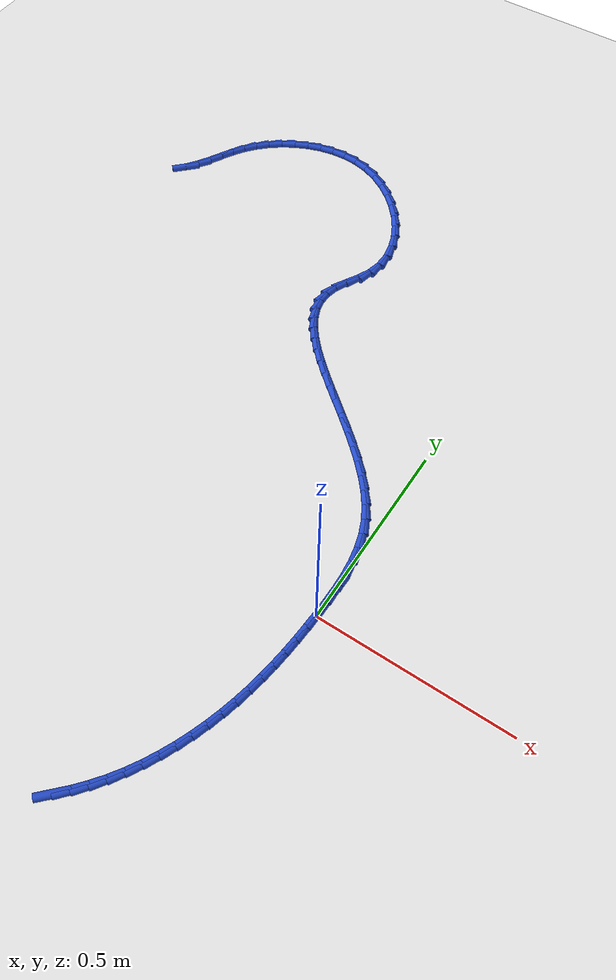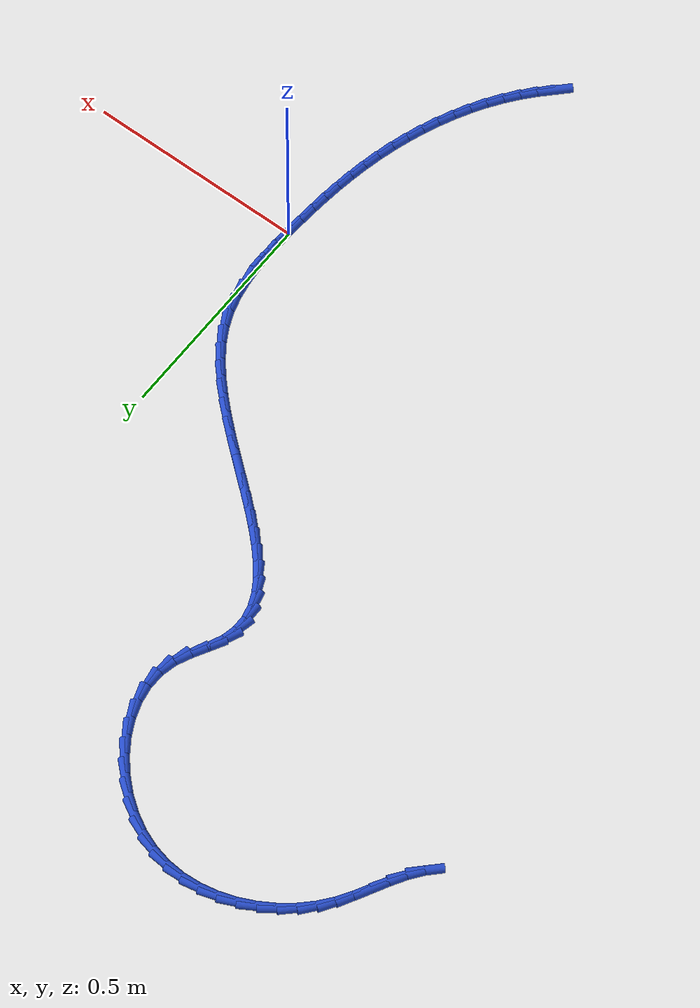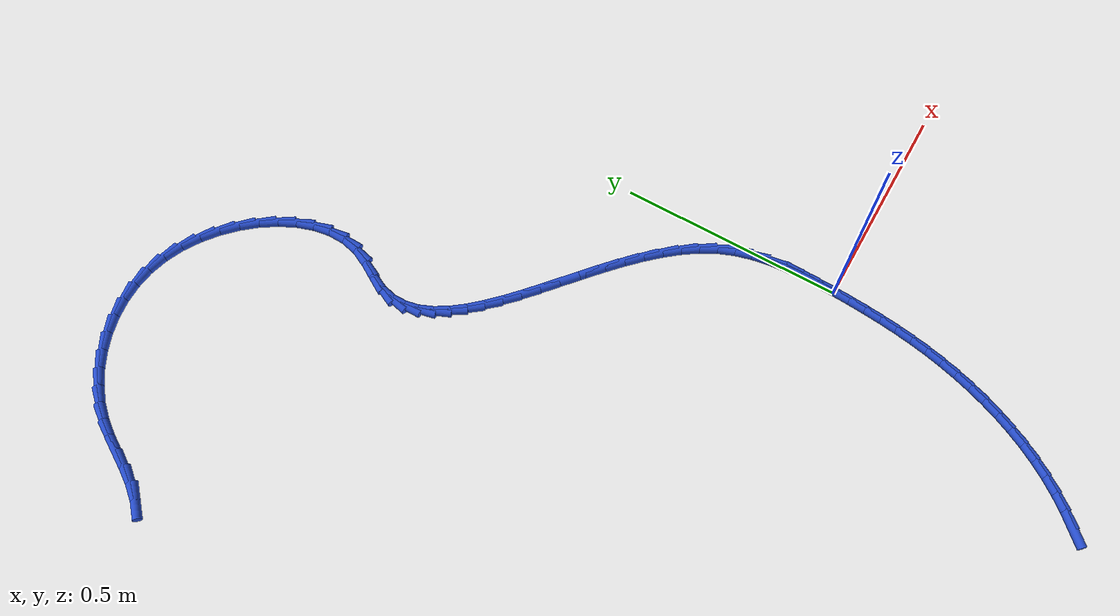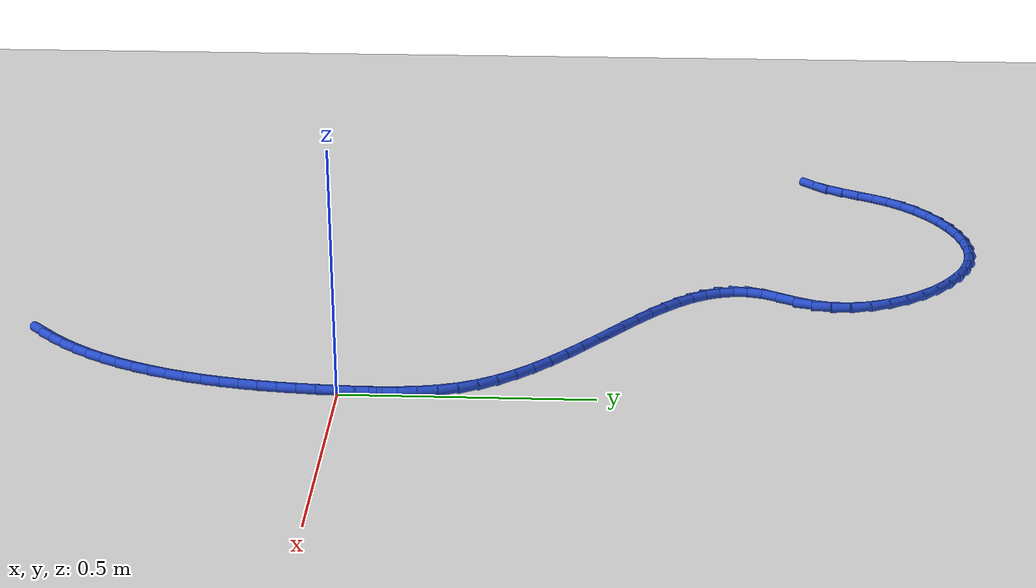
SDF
<sdf version="1.6">
 <world name="default">
  <model name="ground_plane">
   <static>1</static>
   <link name="link">
    <collision name="collision">
     <geometry><plane><normal>0 0 1</normal><size>100 100</size></plane></geometry>
     <surface><friction><ode><mu>100</mu><mu2>50</mu2></ode></friction></surface>
    </collision>
    <visual name="visual">
     <cast_shadows>0</cast_shadows>
     <geometry><plane><normal>0 0 1</normal><size>100 100</size></plane></geometry>
     <material>
      <script><uri>file://media/materials/scripts/gazebo.material</uri><name>Gazebo/WhiteGlow</name></script>
     </material>
    </visual>
   </link>
  </model>
  <model name="line">
   <link name="link_0">
    <pose>5.312590645178972e-18 -6.938893903907228e-18 0.01 0 1.57 1.5284120219829822</pose>
    <collision name="collision">
     <geometry><cylinder><radius>0.01</radius><length>0.08</length></cylinder></geometry>
    </collision>
    <visual name="visual">
     <material>
      <script><name>Gazebo/Blue</name><uri>file://media/materials/scripts/gazebo.material</uri></script>
     </material>
     <geometry><cylinder><radius>0.01</radius><length>0.08</length></cylinder></geometry>
    </visual>
   </link>
   <link name="link_1">
    <pose>0.0016449256357191772 0.03878653967538023 0.01 0 1.57 1.5588082013449085</pose>
    <collision name="collision">
     <geometry><cylinder><radius>0.01</radius><length>0.08</length></cylinder></geometry>
    </collision>
    <visual name="visual">
     <material>
      <script><name>Gazebo/Blue</name><uri>file://media/materials/scripts/gazebo.material</uri></script>
     </material>
     <geometry><cylinder><radius>0.01</radius><length>0.08</length></cylinder></geometry>
    </visual>
   </link>
   <link name="link_2">
    <pose>0.0021105790636816914 0.07762756803634187 0.01 0 1.57 -1.536313613372544</pose>
    <collision name="collision">
     <geometry><cylinder><radius>0.01</radius><length>0.08</length></cylinder></geometry>
    </collision>
    <visual name="visual">
     <material>
      <script><name>Gazebo/Blue</name><uri>file://media/materials/scripts/gazebo.material</uri></script>
     </material>
     <geometry><cylinder><radius>0.01</radius><length>0.08</length></cylinder></geometry>
    </visual>
   </link>
   <link name="link_3">
    <pose>0.000775840544802172 0.11631969280149301 0.01 0 1.57 -1.4731354663270184</pose>
    <collision name="collision">
     <geometry><cylinder><radius>0.01</radius><length>0.08</length></cylinder></geometry>
    </collision>
    <visual name="visual">
     <material>
      <script><name>Gazebo/Blue</name><uri>file://media/materials/scripts/gazebo.material</uri></script>
     </material>
     <geometry><cylinder><radius>0.01</radius><length>0.08</length></cylinder></geometry>
    </visual>
   </link>
   <link name="link_4">
    <pose>-0.002980409660004766 0.15465952168944172 0.01 0 1.57 -1.3927614203770944</pose>
    <collision name="collision">
     <geometry><cylinder><radius>0.01</radius><length>0.08</length></cylinder></geometry>
    </collision>
    <visual name="visual">
     <material>
      <script><name>Gazebo/Blue</name><uri>file://media/materials/scripts/gazebo.material</uri></script>
     </material>
     <geometry><cylinder><radius>0.01</radius><length>0.08</length></cylinder></geometry>
    </visual>
   </link>
   <link name="link_5">
    <pose>-0.009779291289824497 0.1924436624187961 0.01 0 1.57 -1.2953945141184164</pose>
    <collision name="collision">
     <geometry><cylinder><radius>0.01</radius><length>0.08</length></cylinder></geometry>
    </collision>
    <visual name="visual">
     <material>
      <script><name>Gazebo/Blue</name><uri>file://media/materials/scripts/gazebo.material</uri></script>
     </material>
     <geometry><cylinder><radius>0.01</radius><length>0.08</length></cylinder></geometry>
    </visual>
   </link>
   <link name="link_6">
    <pose>-0.02024192408374241 0.22946872270816426 0.01 0 1.57 -1.182605247328614</pose>
    <collision name="collision">
     <geometry><cylinder><radius>0.01</radius><length>0.08</length></cylinder></geometry>
    </collision>
    <visual name="visual">
     <material>
      <script><name>Gazebo/Blue</name><uri>file://media/materials/scripts/gazebo.material</uri></script>
     </material>
     <geometry><cylinder><radius>0.01</radius><length>0.08</length></cylinder></geometry>
    </visual>
   </link>
   <link name="link_7">
    <pose>-0.03498942778084387 0.26553131027615423 0.01 0 1.57 -1.061551290668089</pose>
    <collision name="collision">
     <geometry><cylinder><radius>0.01</radius><length>0.08</length></cylinder></geometry>
    </collision>
    <visual name="visual">
     <material>
      <script><name>Gazebo/Blue</name><uri>file://media/materials/scripts/gazebo.material</uri></script>
     </material>
     <geometry><cylinder><radius>0.01</radius><length>0.08</length></cylinder></geometry>
    </visual>
   </link>
   <link name="link_8">
    <pose>-0.05449430506081396 0.3004632527290053 0.01 0 1.57 -0.9562304875554407</pose>
    <collision name="collision">
     <geometry><cylinder><radius>0.01</radius><length>0.08</length></cylinder></geometry>
    </collision>
    <visual name="visual">
     <material>
      <script><name>Gazebo/Blue</name><uri>file://media/materials/scripts/gazebo.material</uri></script>
     </material>
     <geometry><cylinder><radius>0.01</radius><length>0.08</length></cylinder></geometry>
    </visual>
   </link>
   <link name="link_9">
    <pose>-0.07837352738572875 0.3342991250121306 0.01 0 1.57 -0.8726056410686038</pose>
    <collision name="collision">
     <geometry><cylinder><radius>0.01</radius><length>0.08</length></cylinder></geometry>
    </collision>
    <visual name="visual">
     <material>
      <script><name>Gazebo/Blue</name><uri>file://media/materials/scripts/gazebo.material</uri></script>
     </material>
     <geometry><cylinder><radius>0.01</radius><length>0.08</length></cylinder></geometry>
    </visual>
   </link>
   <link name="link_10">
    <pose>-0.10593854981202931 0.36714590461691826 0.01 0 1.57 -0.8078305541972087</pose>
    <collision name="collision">
     <geometry><cylinder><radius>0.01</radius><length>0.08</length></cylinder></geometry>
    </collision>
    <visual name="visual">
     <material>
      <script><name>Gazebo/Blue</name><uri>file://media/materials/scripts/gazebo.material</uri></script>
     </material>
     <geometry><cylinder><radius>0.01</radius><length>0.08</length></cylinder></geometry>
    </visual>
   </link>
   <link name="link_11">
    <pose>-0.1365004468171024 0.3991106592259611 0.01 0 1.57 -0.7591778529824315</pose>
    <collision name="collision">
     <geometry><cylinder><radius>0.01</radius><length>0.08</length></cylinder></geometry>
    </collision>
    <visual name="visual">
     <material>
      <script><name>Gazebo/Blue</name><uri>file://media/materials/scripts/gazebo.material</uri></script>
     </material>
     <geometry><cylinder><radius>0.01</radius><length>0.08</length></cylinder></geometry>
    </visual>
   </link>
   <link name="link_12">
    <pose>-0.1693702928783347 0.43030045652185134 0.01 0 1.57 -0.7244536635141305</pose>
    <collision name="collision">
     <geometry><cylinder><radius>0.01</radius><length>0.08</length></cylinder></geometry>
    </collision>
    <visual name="visual">
     <material>
      <script><name>Gazebo/Blue</name><uri>file://media/materials/scripts/gazebo.material</uri></script>
     </material>
     <geometry><cylinder><radius>0.01</radius><length>0.08</length></cylinder></geometry>
    </visual>
   </link>
   <link name="link_13">
    <pose>-0.2038591624731127 0.46082236418718153 0.01 0 1.57 -0.7021119610644642</pose>
    <collision name="collision">
     <geometry><cylinder><radius>0.01</radius><length>0.08</length></cylinder></geometry>
    </collision>
    <visual name="visual">
     <material>
      <script><name>Gazebo/Blue</name><uri>file://media/materials/scripts/gazebo.material</uri></script>
     </material>
     <geometry><cylinder><radius>0.01</radius><length>0.08</length></cylinder></geometry>
    </visual>
   </link>
   <link name="link_14">
    <pose>-0.23927813007882323 0.4907834499045443 0.01 0 1.57 -0.6912618850647968</pose>
    <collision name="collision">
     <geometry><cylinder><radius>0.01</radius><length>0.08</length></cylinder></geometry>
    </collision>
    <visual name="visual">
     <material>
      <script><name>Gazebo/Blue</name><uri>file://media/materials/scripts/gazebo.material</uri></script>
     </material>
     <geometry><cylinder><radius>0.01</radius><length>0.08</length></cylinder></geometry>
    </visual>
   </link>
   <link name="link_15">
    <pose>-0.2749382701728529 0.5202907813565317 0.01 0 1.57 -0.6916631385065796</pose>
    <collision name="collision">
     <geometry><cylinder><radius>0.01</radius><length>0.08</length></cylinder></geometry>
    </collision>
    <visual name="visual">
     <material>
      <script><name>Gazebo/Blue</name><uri>file://media/materials/scripts/gazebo.material</uri></script>
     </material>
     <geometry><cylinder><radius>0.01</radius><length>0.08</length></cylinder></geometry>
    </visual>
   </link>
   <link name="link_16">
    <pose>-0.3101506572325884 0.5494514262257368 0.01 0 1.57 -0.7037554468040839</pose>
    <collision name="collision">
     <geometry><cylinder><radius>0.01</radius><length>0.08</length></cylinder></geometry>
    </collision>
    <visual name="visual">
     <material>
      <script><name>Gazebo/Blue</name><uri>file://media/materials/scripts/gazebo.material</uri></script>
     </material>
     <geometry><cylinder><radius>0.01</radius><length>0.08</length></cylinder></geometry>
    </visual>
   </link>
   <link name="link_17">
    <pose>-0.3442263657354163 0.5783724521947516 0.01 0 1.57 -0.7287466868001244</pose>
    <collision name="collision">
     <geometry><cylinder><radius>0.01</radius><length>0.08</length></cylinder></geometry>
    </collision>
    <visual name="visual">
     <material>
      <script><name>Gazebo/Blue</name><uri>file://media/materials/scripts/gazebo.material</uri></script>
     </material>
     <geometry><cylinder><radius>0.01</radius><length>0.08</length></cylinder></geometry>
    </visual>
   </link>
   <link name="link_18">
    <pose>-0.37647647015872343 0.6071609269461689 0.01 0 1.57 -0.7687739267215762</pose>
    <collision name="collision">
     <geometry><cylinder><radius>0.01</radius><length>0.08</length></cylinder></geometry>
    </collision>
    <visual name="visual">
     <material>
      <script><name>Gazebo/Blue</name><uri>file://media/materials/scripts/gazebo.material</uri></script>
     </material>
     <geometry><cylinder><radius>0.01</radius><length>0.08</length></cylinder></geometry>
    </visual>
   </link>
   <link name="link_19">
    <pose>-0.40621204497989616 0.6359239181625808 0.01 0 1.57 -0.827132559578673</pose>
    <collision name="collision">
     <geometry><cylinder><radius>0.01</radius><length>0.08</length></cylinder></geometry>
    </collision>
    <visual name="visual">
     <material>
      <script><name>Gazebo/Blue</name><uri>file://media/materials/scripts/gazebo.material</uri></script>
     </material>
     <geometry><cylinder><radius>0.01</radius><length>0.08</length></cylinder></geometry>
    </visual>
   </link>
   <link name="link_20">
    <pose>-0.43274416467632143 0.6647684935265801 0.01 0 1.57 -0.9085023496919414</pose>
    <collision name="collision">
     <geometry><cylinder><radius>0.01</radius><length>0.08</length></cylinder></geometry>
    </collision>
    <visual name="visual">
     <material>
      <script><name>Gazebo/Blue</name><uri>file://media/materials/scripts/gazebo.material</uri></script>
     </material>
     <geometry><cylinder><radius>0.01</radius><length>0.08</length></cylinder></geometry>
    </visual>
   </link>
   <link name="link_21">
    <pose>-0.4553839037253859 0.6938017207207593 0.01 0 1.57 -1.0188977773859</pose>
    <collision name="collision">
     <geometry><cylinder><radius>0.01</radius><length>0.08</length></cylinder></geometry>
    </collision>
    <visual name="visual">
     <material>
      <script><name>Gazebo/Blue</name><uri>file://media/materials/scripts/gazebo.material</uri></script>
     </material>
     <geometry><cylinder><radius>0.01</radius><length>0.08</length></cylinder></geometry>
    </visual>
   </link>
   <link name="link_22">
    <pose>-0.4734423366044761 0.7231306674277107 0.01 0 1.57 -1.1645973447803368</pose>
    <collision name="collision">
     <geometry><cylinder><radius>0.01</radius><length>0.08</length></cylinder></geometry>
    </collision>
    <visual name="visual">
     <material>
      <script><name>Gazebo/Blue</name><uri>file://media/materials/scripts/gazebo.material</uri></script>
     </material>
     <geometry><cylinder><radius>0.01</radius><length>0.08</length></cylinder></geometry>
    </visual>
   </link>
   <link name="link_23">
    <pose>-0.4862305377909788 0.752862401330027 0.01 0 1.57 -1.3487050452910978</pose>
    <collision name="collision">
     <geometry><cylinder><radius>0.01</radius><length>0.08</length></cylinder></geometry>
    </collision>
    <visual name="visual">
     <material>
      <script><name>Gazebo/Blue</name><uri>file://media/materials/scripts/gazebo.material</uri></script>
     </material>
     <geometry><cylinder><radius>0.01</radius><length>0.08</length></cylinder></geometry>
    </visual>
   </link>
   <link name="link_24">
    <pose>-0.4930595817622805 0.7831039901103003 0.01 0 1.57 -1.564932169669321</pose>
    <collision name="collision">
     <geometry><cylinder><radius>0.01</radius><length>0.08</length></cylinder></geometry>
    </collision>
    <visual name="visual">
     <material>
      <script><name>Gazebo/Blue</name><uri>file://media/materials/scripts/gazebo.material</uri></script>
     </material>
     <geometry><cylinder><radius>0.01</radius><length>0.08</length></cylinder></geometry>
    </visual>
   </link>
   <link name="link_25">
    <pose>-0.4932405429957679 0.8139625014511231 0.01 0 1.57 1.347976003183025</pose>
    <collision name="collision">
     <geometry><cylinder><radius>0.01</radius><length>0.08</length></cylinder></geometry>
    </collision>
    <visual name="visual">
     <material>
      <script><name>Gazebo/Blue</name><uri>file://media/materials/scripts/gazebo.material</uri></script>
     </material>
     <geometry><cylinder><radius>0.01</radius><length>0.08</length></cylinder></geometry>
    </visual>
   </link>
   <link name="link_26">
    <pose>-0.48608449596882786 0.8455450030350884 0.01 0 1.57 1.139984625933581</pose>
    <collision name="collision">
     <geometry><cylinder><radius>0.01</radius><length>0.08</length></cylinder></geometry>
    </collision>
    <visual name="visual">
     <material>
      <script><name>Gazebo/Blue</name><uri>file://media/materials/scripts/gazebo.material</uri></script>
     </material>
     <geometry><cylinder><radius>0.01</radius><length>0.08</length></cylinder></geometry>
    </visual>
   </link>
   <link name="link_27">
    <pose>-0.4711798877305397 0.8779742554726534 0.01 0 1.57 1.0559183384728728</pose>
    <collision name="collision">
     <geometry><cylinder><radius>0.01</radius><length>0.08</length></cylinder></geometry>
    </collision>
    <visual name="visual">
     <material>
      <script><name>Gazebo/Blue</name><uri>file://media/materials/scripts/gazebo.material</uri></script>
     </material>
     <geometry><cylinder><radius>0.01</radius><length>0.08</length></cylinder></geometry>
    </visual>
   </link>
   <link name="link_28">
    <pose>-0.4521542267847806 0.911601537643639 0.01 0 1.57 1.1348610680621782</pose>
    <collision name="collision">
     <geometry><cylinder><radius>0.01</radius><length>0.08</length></cylinder></geometry>
    </collision>
    <visual name="visual">
     <material>
      <script><name>Gazebo/Blue</name><uri>file://media/materials/scripts/gazebo.material</uri></script>
     </material>
     <geometry><cylinder><radius>0.01</radius><length>0.08</length></cylinder></geometry>
    </visual>
   </link>
   <link name="link_29">
    <pose>-0.4356876977392102 0.946950760601224 0.01 0 1.57 1.341253518974366</pose>
    <collision name="collision">
     <geometry><cylinder><radius>0.01</radius><length>0.08</length></cylinder></geometry>
    </collision>
    <visual name="visual">
     <material>
      <script><name>Gazebo/Blue</name><uri>file://media/materials/scripts/gazebo.material</uri></script>
     </material>
     <geometry><cylinder><radius>0.01</radius><length>0.08</length></cylinder></geometry>
    </visual>
   </link>
   <link name="link_30">
    <pose>-0.42696664289917663 0.9842742719191184 0.01 0 1.57 1.5522628280849675</pose>
    <collision name="collision">
     <geometry><cylinder><radius>0.01</radius><length>0.08</length></cylinder></geometry>
    </collision>
    <visual name="visual">
     <material>
      <script><name>Gazebo/Blue</name><uri>file://media/materials/scripts/gazebo.material</uri></script>
     </material>
     <geometry><cylinder><radius>0.01</radius><length>0.08</length></cylinder></geometry>
    </visual>
   </link>
   <link name="link_31">
    <pose>-0.42624961150082696 1.0229582414085496 0.01 0 1.57 -1.4047243893705195</pose>
    <collision name="collision">
     <geometry><cylinder><radius>0.01</radius><length>0.08</length></cylinder></geometry>
    </collision>
    <visual name="visual">
     <material>
      <script><name>Gazebo/Blue</name><uri>file://media/materials/scripts/gazebo.material</uri></script>
     </material>
     <geometry><cylinder><radius>0.01</radius><length>0.08</length></cylinder></geometry>
    </visual>
   </link>
   <link name="link_32">
    <pose>-0.432830374694662 1.062219256004236 0.01 0 1.57 -1.245498500117396</pose>
    <collision name="collision">
     <geometry><cylinder><radius>0.01</radius><length>0.08</length></cylinder></geometry>
    </collision>
    <visual name="visual">
     <material>
      <script><name>Gazebo/Blue</name><uri>file://media/materials/scripts/gazebo.material</uri></script>
     </material>
     <geometry><cylinder><radius>0.01</radius><length>0.08</length></cylinder></geometry>
    </visual>
   </link>
   <link name="link_33">
    <pose>-0.4460027036311829 1.1012739026408969 0.01 0 1.57 -1.106618542120685</pose>
    <collision name="collision">
     <geometry><cylinder><radius>0.01</radius><length>0.08</length></cylinder></geometry>
    </collision>
    <visual name="visual">
     <material>
      <script><name>Gazebo/Blue</name><uri>file://media/materials/scripts/gazebo.material</uri></script>
     </material>
     <geometry><cylinder><radius>0.01</radius><length>0.08</length></cylinder></geometry>
    </visual>
   </link>
   <link name="link_34">
    <pose>-0.46506036946089047 1.1393387682532505 0.01 0 1.57 -0.9819867343227149</pose>
    <collision name="collision">
     <geometry><cylinder><radius>0.01</radius><length>0.08</length></cylinder></geometry>
    </collision>
    <visual name="visual">
     <material>
      <script><name>Gazebo/Blue</name><uri>file://media/materials/scripts/gazebo.material</uri></script>
     </material>
     <geometry><cylinder><radius>0.01</radius><length>0.08</length></cylinder></geometry>
    </visual>
   </link>
   <link name="link_35">
    <pose>-0.48929714333428564 1.1756304397760151 0.01 0 1.57 -0.8657028578745892</pose>
    <collision name="collision">
     <geometry><cylinder><radius>0.01</radius><length>0.08</length></cylinder></geometry>
    </collision>
    <visual name="visual">
     <material>
      <script><name>Gazebo/Blue</name><uri>file://media/materials/scripts/gazebo.material</uri></script>
     </material>
     <geometry><cylinder><radius>0.01</radius><length>0.08</length></cylinder></geometry>
    </visual>
   </link>
   <link name="link_36">
    <pose>-0.5180067964018695 1.2093655041439102 0.01 0 1.57 -0.752306785481803</pose>
    <collision name="collision">
     <geometry><cylinder><radius>0.01</radius><length>0.08</length></cylinder></geometry>
    </collision>
    <visual name="visual">
     <material>
      <script><name>Gazebo/Blue</name><uri>file://media/materials/scripts/gazebo.material</uri></script>
     </material>
     <geometry><cylinder><radius>0.01</radius><length>0.08</length></cylinder></geometry>
    </visual>
   </link>
   <link name="link_37">
    <pose>-0.550483099814143 1.2397605482916536 0.01 0 1.57 -0.6366053123781082</pose>
    <collision name="collision">
     <geometry><cylinder><radius>0.01</radius><length>0.08</length></cylinder></geometry>
    </collision>
    <visual name="visual">
     <material>
      <script><name>Gazebo/Blue</name><uri>file://media/materials/scripts/gazebo.material</uri></script>
     </material>
     <geometry><cylinder><radius>0.01</radius><length>0.08</length></cylinder></geometry>
    </visual>
   </link>
   <link name="link_38">
    <pose>-0.5860198247216069 1.2660321591539643 0.01 0 1.57 -0.5134138002548242</pose>
    <collision name="collision">
     <geometry><cylinder><radius>0.01</radius><length>0.08</length></cylinder></geometry>
    </collision>
    <visual name="visual">
     <material>
      <script><name>Gazebo/Blue</name><uri>file://media/materials/scripts/gazebo.material</uri></script>
     </material>
     <geometry><cylinder><radius>0.01</radius><length>0.08</length></cylinder></geometry>
    </visual>
   </link>
   <link name="link_39">
    <pose>-0.6239107422747626 1.287396923665561 0.01 0 1.57 -0.3774273320935404</pose>
    <collision name="collision">
     <geometry><cylinder><radius>0.01</radius><length>0.08</length></cylinder></geometry>
    </collision>
    <visual name="visual">
     <material>
      <script><name>Gazebo/Blue</name><uri>file://media/materials/scripts/gazebo.material</uri></script>
     </material>
     <geometry><cylinder><radius>0.01</radius><length>0.08</length></cylinder></geometry>
    </visual>
   </link>
   <link name="link_40">
    <pose>-0.663449623624111 1.3030714287611622 0.01 0 1.57 -0.22660096215738756</pose>
    <collision name="collision">
     <geometry><cylinder><radius>0.01</radius><length>0.08</length></cylinder></geometry>
    </collision>
    <visual name="visual">
     <material>
      <script><name>Gazebo/Blue</name><uri>file://media/materials/scripts/gazebo.material</uri></script>
     </material>
     <geometry><cylinder><radius>0.01</radius><length>0.08</length></cylinder></geometry>
    </visual>
   </link>
   <link name="link_41">
    <pose>-0.7039492587727624 1.3124090576921918 0.01 0 1.57 -0.07704988709630899</pose>
    <collision name="collision">
     <geometry><cylinder><radius>0.01</radius><length>0.08</length></cylinder></geometry>
    </collision>
    <visual name="visual">
     <material>
      <script><name>Gazebo/Blue</name><uri>file://media/materials/scripts/gazebo.material</uri></script>
     </material>
     <geometry><cylinder><radius>0.01</radius><length>0.08</length></cylinder></geometry>
    </visual>
   </link>
   <link name="link_42">
    <pose>-0.7448339784703472 1.3155654694098442 0.01 0 1.57 0.063193166868156</pose>
    <collision name="collision">
     <geometry><cylinder><radius>0.01</radius><length>0.08</length></cylinder></geometry>
    </collision>
    <visual name="visual">
     <material>
      <script><name>Gazebo/Blue</name><uri>file://media/materials/scripts/gazebo.material</uri></script>
     </material>
     <geometry><cylinder><radius>0.01</radius><length>0.08</length></cylinder></geometry>
    </visual>
   </link>
   <link name="link_43">
    <pose>-0.7855686494167231 1.3129878845488225 0.01 0 1.57 0.19388873700589332</pose>
    <collision name="collision">
     <geometry><cylinder><radius>0.01</radius><length>0.08</length></cylinder></geometry>
    </collision>
    <visual name="visual">
     <material>
      <script><name>Gazebo/Blue</name><uri>file://media/materials/scripts/gazebo.material</uri></script>
     </material>
     <geometry><cylinder><radius>0.01</radius><length>0.08</length></cylinder></geometry>
    </visual>
   </link>
   <link name="link_44">
    <pose>-0.8256181959069561 1.3051239380071156 0.01 0 1.57 0.31616718971435864</pose>
    <collision name="collision">
     <geometry><cylinder><radius>0.01</radius><length>0.08</length></cylinder></geometry>
    </collision>
    <visual name="visual">
     <material>
      <script><name>Gazebo/Blue</name><uri>file://media/materials/scripts/gazebo.material</uri></script>
     </material>
     <geometry><cylinder><radius>0.01</radius><length>0.08</length></cylinder></geometry>
    </visual>
   </link>
   <link name="link_45">
    <pose>-0.8644475422361128 1.2924212646827133 0.01 0 1.57 0.43202203526242683</pose>
    <collision name="collision">
     <geometry><cylinder><radius>0.01</radius><length>0.08</length></cylinder></geometry>
    </collision>
    <visual name="visual">
     <material>
      <script><name>Gazebo/Blue</name><uri>file://media/materials/scripts/gazebo.material</uri></script>
     </material>
     <geometry><cylinder><radius>0.01</radius><length>0.08</length></cylinder></geometry>
    </visual>
   </link>
   <link name="link_46">
    <pose>-0.9015216126992591 1.2753274994736041 0.01 0 1.57 0.5439420498613435</pose>
    <collision name="collision">
     <geometry><cylinder><radius>0.01</radius><length>0.08</length></cylinder></geometry>
    </collision>
    <visual name="visual">
     <material>
      <script><name>Gazebo/Blue</name><uri>file://media/materials/scripts/gazebo.material</uri></script>
     </material>
     <geometry><cylinder><radius>0.01</radius><length>0.08</length></cylinder></geometry>
    </visual>
   </link>
   <link name="link_47">
    <pose>-0.9363053315914616 1.2542902772777773 0.01 0 1.57 0.6547068976025224</pose>
    <collision name="collision">
     <geometry><cylinder><radius>0.01</radius><length>0.08</length></cylinder></geometry>
    </collision>
    <visual name="visual">
     <material>
      <script><name>Gazebo/Blue</name><uri>file://media/materials/scripts/gazebo.material</uri></script>
     </material>
     <geometry><cylinder><radius>0.01</radius><length>0.08</length></cylinder></geometry>
    </visual>
   </link>
   <link name="link_48">
    <pose>-0.9682636232077863 1.2297572329932227 0.01 0 1.57 0.7673051772545425</pose>
    <collision name="collision">
     <geometry><cylinder><radius>0.01</radius><length>0.08</length></cylinder></geometry>
    </collision>
    <visual name="visual">
     <material>
      <script><name>Gazebo/Blue</name><uri>file://media/materials/scripts/gazebo.material</uri></script>
     </material>
     <geometry><cylinder><radius>0.01</radius><length>0.08</length></cylinder></geometry>
    </visual>
   </link>
   <link name="link_49">
    <pose>-0.9968614118432991 1.2021760015179295 0.01 0 1.57 0.8849014976598666</pose>
    <collision name="collision">
     <geometry><cylinder><radius>0.01</radius><length>0.08</length></cylinder></geometry>
    </collision>
    <visual name="visual">
     <material>
      <script><name>Gazebo/Blue</name><uri>file://media/materials/scripts/gazebo.material</uri></script>
     </material>
     <geometry><cylinder><radius>0.01</radius><length>0.08</length></cylinder></geometry>
    </visual>
   </link>
   <link name="link_50">
    <pose>-1.0215638838793204 1.1719942734082684 0.01 0 1.57 0.9976688930900294</pose>
    <collision name="collision">
     <geometry><cylinder><radius>0.01</radius><length>0.08</length></cylinder></geometry>
    </collision>
    <visual name="visual">
     <material>
      <script><name>Gazebo/Blue</name><uri>file://media/materials/scripts/gazebo.material</uri></script>
     </material>
     <geometry><cylinder><radius>0.01</radius><length>0.08</length></cylinder></geometry>
    </visual>
   </link>
   <link name="link_51">
    <pose>-1.0423604154183082 1.139771059640576 0.01 0 1.57 1.0644278926797055</pose>
    <collision name="collision">
     <geometry><cylinder><radius>0.01</radius><length>0.08</length></cylinder></geometry>
    </collision>
    <visual name="visual">
     <material>
      <script><name>Gazebo/Blue</name><uri>file://media/materials/scripts/gazebo.material</uri></script>
     </material>
     <geometry><cylinder><radius>0.01</radius><length>0.08</length></cylinder></geometry>
    </visual>
   </link>
   <link name="link_52">
    <pose>-1.0608625516020889 1.106409865811045 0.01 0 1.57 1.0750551862706945</pose>
    <collision name="collision">
     <geometry><cylinder><radius>0.01</radius><length>0.08</length></cylinder></geometry>
    </collision>
    <visual name="visual">
     <material>
      <script><name>Gazebo/Blue</name><uri>file://media/materials/scripts/gazebo.material</uri></script>
     </material>
     <geometry><cylinder><radius>0.01</radius><length>0.08</length></cylinder></geometry>
    </visual>
   </link>
   <link name="link_53">
    <pose>-1.0789946709633822 1.072880632898038 0.01 0 1.57 1.0292523694744466</pose>
    <collision name="collision">
     <geometry><cylinder><radius>0.01</radius><length>0.08</length></cylinder></geometry>
    </collision>
    <visual name="visual">
     <material>
      <script><name>Gazebo/Blue</name><uri>file://media/materials/scripts/gazebo.material</uri></script>
     </material>
     <geometry><cylinder><radius>0.01</radius><length>0.08</length></cylinder></geometry>
    </visual>
   </link>
   <link name="link_54">
    <pose>-1.0986811520349062 1.0401533018799172 0.01 0 1.57 0.9283586446200401</pose>
    <collision name="collision">
     <geometry><cylinder><radius>0.01</radius><length>0.08</length></cylinder></geometry>
    </collision>
    <visual name="visual">
     <material>
      <script><name>Gazebo/Blue</name><uri>file://media/materials/scripts/gazebo.material</uri></script>
     </material>
     <geometry><cylinder><radius>0.01</radius><length>0.08</length></cylinder></geometry>
    </visual>
   </link>
   <link name="link_55">
    <pose>-1.121846373349381 1.0091978137350452 0.01 0 1.57 0.7889200525842539</pose>
    <collision name="collision">
     <geometry><cylinder><radius>0.01</radius><length>0.08</length></cylinder></geometry>
    </collision>
    <visual name="visual">
     <material>
      <script><name>Gazebo/Blue</name><uri>file://media/materials/scripts/gazebo.material</uri></script>
     </material>
     <geometry><cylinder><radius>0.01</radius><length>0.08</length></cylinder></geometry>
    </visual>
   </link>
   <link name="link_212">
    <pose>-0.23588658783344205 -0.6270796625563603 0.01 0 1.57 0.791020735348847</pose>
    <collision name="collision">
     <geometry><cylinder><radius>0.01</radius><length>0.08</length></cylinder></geometry>
    </collision>
    <visual name="visual">
     <material>
      <script><name>Gazebo/Blue</name><uri>file://media/materials/scripts/gazebo.material</uri></script>
     </material>
     <geometry><cylinder><radius>0.01</radius><length>0.08</length></cylinder></geometry>
    </visual>
   </link>
   <link name="link_213">
    <pose>-0.20965520623339573 -0.6005516342520113 0.01 0 1.57 0.8497101020062904</pose>
    <collision name="collision">
     <geometry><cylinder><radius>0.01</radius><length>0.08</length></cylinder></geometry>
    </collision>
    <visual name="visual">
     <material>
      <script><name>Gazebo/Blue</name><uri>file://media/materials/scripts/gazebo.material</uri></script>
     </material>
     <geometry><cylinder><radius>0.01</radius><length>0.08</length></cylinder></geometry>
    </visual>
   </link>
   <link name="link_214">
    <pose>-0.18501522321457 -0.5725195292154168 0.01 0 1.57 0.908337533929391</pose>
    <collision name="collision">
     <geometry><cylinder><radius>0.01</radius><length>0.08</length></cylinder></geometry>
    </collision>
    <visual name="visual">
     <material>
      <script><name>Gazebo/Blue</name><uri>file://media/materials/scripts/gazebo.material</uri></script>
     </material>
     <geometry><cylinder><radius>0.01</radius><length>0.08</length></cylinder></geometry>
    </visual>
   </link>
   <link name="link_215">
    <pose>-0.1619837133038766 -0.542993931105248 0.01 0 1.57 0.9665853889201758</pose>
    <collision name="collision">
     <geometry><cylinder><radius>0.01</radius><length>0.08</length></cylinder></geometry>
    </collision>
    <visual name="visual">
     <material>
      <script><name>Gazebo/Blue</name><uri>file://media/materials/scripts/gazebo.material</uri></script>
     </material>
     <geometry><cylinder><radius>0.01</radius><length>0.08</length></cylinder></geometry>
    </visual>
   </link>
   <link name="link_216">
    <pose>-0.14057768693898037 -0.5119858285404505 0.01 0 1.57 1.023228698579949</pose>
    <collision name="collision">
     <geometry><cylinder><radius>0.01</radius><length>0.08</length></cylinder></geometry>
    </collision>
    <visual name="visual">
     <material>
      <script><name>Gazebo/Blue</name><uri>file://media/materials/scripts/gazebo.material</uri></script>
     </material>
     <geometry><cylinder><radius>0.01</radius><length>0.08</length></cylinder></geometry>
    </visual>
   </link>
   <link name="link_217">
    <pose>-0.12080563322557321 -0.47956005381866884 0.01 0 1.57 1.076490002947605</pose>
    <collision name="collision">
     <geometry><cylinder><radius>0.01</radius><length>0.08</length></cylinder></geometry>
    </collision>
    <visual name="visual">
     <material>
      <script><name>Gazebo/Blue</name><uri>file://media/materials/scripts/gazebo.material</uri></script>
     </material>
     <geometry><cylinder><radius>0.01</radius><length>0.08</length></cylinder></geometry>
    </visual>
   </link>
   <link name="link_218">
    <pose>-0.1026590623820475 -0.44588872360994575 0.01 0 1.57 1.126552787667604</pose>
    <collision name="collision">
     <geometry><cylinder><radius>0.01</radius><length>0.08</length></cylinder></geometry>
    </collision>
    <visual name="visual">
     <material>
      <script><name>Gazebo/Blue</name><uri>file://media/materials/scripts/gazebo.material</uri></script>
     </material>
     <geometry><cylinder><radius>0.01</radius><length>0.08</length></cylinder></geometry>
    </visual>
   </link>
   <link name="link_219">
    <pose>-0.08612747259620475 -0.4111566679874615 0.01 0 1.57 1.1738424196728945</pose>
    <collision name="collision">
     <geometry><cylinder><radius>0.01</radius><length>0.08</length></cylinder></geometry>
    </collision>
    <visual name="visual">
     <material>
      <script><name>Gazebo/Blue</name><uri>file://media/materials/scripts/gazebo.material</uri></script>
     </material>
     <geometry><cylinder><radius>0.01</radius><length>0.08</length></cylinder></geometry>
    </visual>
   </link>
   <link name="link_220">
    <pose>-0.07120036205584797 -0.37554871702439985 0.01 0 1.57 1.2187811259734012</pose>
    <collision name="collision">
     <geometry><cylinder><radius>0.01</radius><length>0.08</length></cylinder></geometry>
    </collision>
    <visual name="visual">
     <material>
      <script><name>Gazebo/Blue</name><uri>file://media/materials/scripts/gazebo.material</uri></script>
     </material>
     <geometry><cylinder><radius>0.01</radius><length>0.08</length></cylinder></geometry>
    </visual>
   </link>
   <link name="link_221">
    <pose>-0.057867228948778764 -0.33924970079394134 0.01 0 1.57 1.2617841961927065</pose>
    <collision name="collision">
     <geometry><cylinder><radius>0.01</radius><length>0.08</length></cylinder></geometry>
    </collision>
    <visual name="visual">
     <material>
      <script><name>Gazebo/Blue</name><uri>file://media/materials/scripts/gazebo.material</uri></script>
     </material>
     <geometry><cylinder><radius>0.01</radius><length>0.08</length></cylinder></geometry>
    </visual>
   </link>
   <link name="link_222">
    <pose>-0.046117571462799226 -0.3024444493692678 0.01 0 1.57 1.3032597841855726</pose>
    <collision name="collision">
     <geometry><cylinder><radius>0.01</radius><length>0.08</length></cylinder></geometry>
    </collision>
    <visual name="visual">
     <material>
      <script><name>Gazebo/Blue</name><uri>file://media/materials/scripts/gazebo.material</uri></script>
     </material>
     <geometry><cylinder><radius>0.01</radius><length>0.08</length></cylinder></geometry>
    </visual>
   </link>
   <link name="link_223">
    <pose>-0.03594084980903355 -0.26531773508717654 0.01 0 1.57 1.3431103362742562</pose>
    <collision name="collision">
     <geometry><cylinder><radius>0.01</radius><length>0.08</length></cylinder></geometry>
    </collision>
    <visual name="visual">
     <material>
      <script><name>Gazebo/Blue</name><uri>file://media/materials/scripts/gazebo.material</uri></script>
     </material>
     <geometry><cylinder><radius>0.01</radius><length>0.08</length></cylinder></geometry>
    </visual>
   </link>
   <link name="link_224">
    <pose>-0.02729603776509042 -0.22800798140623976 0.01 0 1.57 1.3800156035754414</pose>
    <collision name="collision">
     <geometry><cylinder><radius>0.01</radius><length>0.08</length></cylinder></geometry>
    </collision>
    <visual name="visual">
     <material>
      <script><name>Gazebo/Blue</name><uri>file://media/materials/scripts/gazebo.material</uri></script>
     </material>
     <geometry><cylinder><radius>0.01</radius><length>0.08</length></cylinder></geometry>
    </visual>
   </link>
   <link name="link_225">
    <pose>-0.020056738584750756 -0.19052382198816403 0.01 0 1.57 1.4135023231813542</pose>
    <collision name="collision">
     <geometry><cylinder><radius>0.01</radius><length>0.08</length></cylinder></geometry>
    </collision>
    <visual name="visual">
     <material>
      <script><name>Gazebo/Blue</name><uri>file://media/materials/scripts/gazebo.material</uri></script>
     </material>
     <geometry><cylinder><radius>0.01</radius><length>0.08</length></cylinder></geometry>
    </visual>
   </link>
   <link name="link_226">
    <pose>-0.014081725535525872 -0.15285134429464367 0.01 0 1.57 1.4433849121610773</pose>
    <collision name="collision">
     <geometry><cylinder><radius>0.01</radius><length>0.08</length></cylinder></geometry>
    </collision>
    <visual name="visual">
     <material>
      <script><name>Gazebo/Blue</name><uri>file://media/materials/scripts/gazebo.material</uri></script>
     </material>
     <geometry><cylinder><radius>0.01</radius><length>0.08</length></cylinder></geometry>
    </visual>
   </link>
   <link name="link_227">
    <pose>-0.009229771884927056 -0.11497663578737294 0.01 0 1.57 1.4695414181798816</pose>
    <collision name="collision">
     <geometry><cylinder><radius>0.01</radius><length>0.08</length></cylinder></geometry>
    </collision>
    <visual name="visual">
     <material>
      <script><name>Gazebo/Blue</name><uri>file://media/materials/scripts/gazebo.material</uri></script>
     </material>
     <geometry><cylinder><radius>0.01</radius><length>0.08</length></cylinder></geometry>
    </visual>
   </link>
   <link name="link_228">
    <pose>-0.005359650900465528 -0.07688578392804511 0.01 0 1.57 1.4919039576164141</pose>
    <collision name="collision">
     <geometry><cylinder><radius>0.01</radius><length>0.08</length></cylinder></geometry>
    </collision>
    <visual name="visual">
     <material>
      <script><name>Gazebo/Blue</name><uri>file://media/materials/scripts/gazebo.material</uri></script>
     </material>
     <geometry><cylinder><radius>0.01</radius><length>0.08</length></cylinder></geometry>
    </visual>
   </link>
   <link name="link_229">
    <pose>-0.0023301358496527814 -0.0385648761783564 0.01 0 1.57 1.5104484995260081</pose>
    <collision name="collision">
     <geometry><cylinder><radius>0.01</radius><length>0.08</length></cylinder></geometry>
    </collision>
    <visual name="visual">
     <material>
      <script><name>Gazebo/Blue</name><uri>file://media/materials/scripts/gazebo.material</uri></script>
     </material>
     <geometry><cylinder><radius>0.01</radius><length>0.08</length></cylinder></geometry>
    </visual>
   </link>
   <link name="link_230">
    <pose>-1.8431436932253575e-18 -1.0408340855860843e-16 0.01 0 1.57 1.5251850787121644</pose>
    <collision name="collision">
     <geometry><cylinder><radius>0.01</radius><length>0.08</length></cylinder></geometry>
    </collision>
    <visual name="visual">
     <material>
      <script><name>Gazebo/Blue</name><uri>file://media/materials/scripts/gazebo.material</uri></script>
     </material>
     <geometry><cylinder><radius>0.01</radius><length>0.08</length></cylinder></geometry>
    </visual>
   </link>
   <link name="link_231">
    <pose>0.0017719833809815085 0.03882275714532952 0.01 0 1.57 1.5361491608003235</pose>
    <collision name="collision">
     <geometry><cylinder><radius>0.01</radius><length>0.08</length></cylinder></geometry>
    </collision>
    <visual name="visual">
     <material>
      <script><name>Gazebo/Blue</name><uri>file://media/materials/scripts/gazebo.material</uri></script>
     </material>
     <geometry><cylinder><radius>0.01</radius><length>0.08</length></cylinder></geometry>
    </visual>
   </link>
   <link name="link_232">
    <pose>0.0031270410257804512 0.07791730779593821 0.01 0 1.57 1.5306850359166868</pose>
    <collision name="collision">
     <geometry><cylinder><radius>0.01</radius><length>0.08</length></cylinder></geometry>
    </collision>
    <visual name="visual">
     <material>
      <script><name>Gazebo/Blue</name><uri>file://media/materials/scripts/gazebo.material</uri></script>
     </material>
     <geometry><cylinder><radius>0.01</radius><length>0.08</length></cylinder></geometry>
    </visual>
   </link>
  </model>
 </world>
</sdf>
